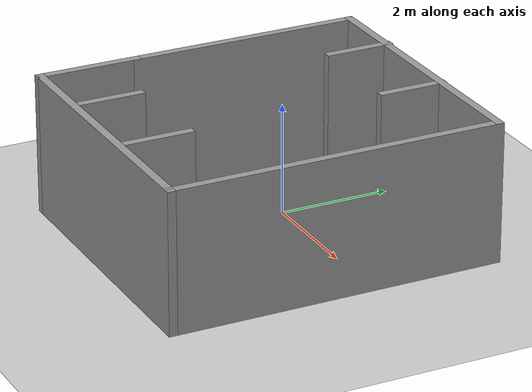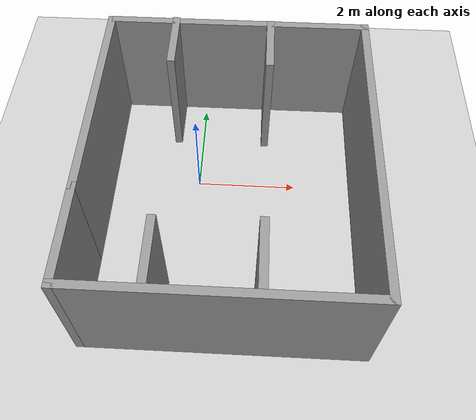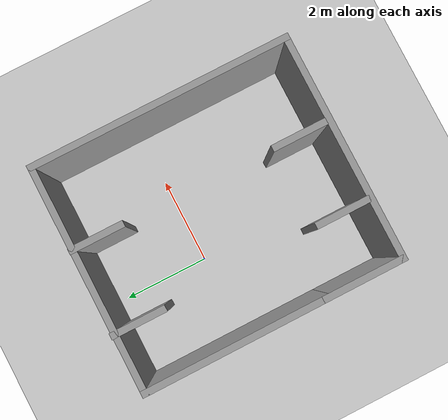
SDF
<sdf version="1.7">
 <world name="soccer">
  <light name="sun" type="directional">
   <pose>0 0 10 0 -0 0</pose>
   <diffuse>0.8 0.8 0.8 1</diffuse>
   <specular>0.2 0.2 0.2 1</specular>
   <attenuation>
    <range>1000</range>
    <constant>0.9</constant>
    <linear>0.01</linear>
    <quadratic>0.001</quadratic>
   </attenuation>
   <direction>-0.5 0.1 -0.9</direction>
   <spot><inner_angle>0</inner_angle><outer_angle>0</outer_angle><falloff>0</falloff></spot>
  </light>
  <model name="ground_plane">
   <static>1</static>
   <link name="link">
    <collision name="collision">
     <geometry><plane><normal>0 0 1</normal><size>100 100</size></plane></geometry>
     <surface>
      <contact><collide_bitmask>65535</collide_bitmask></contact>
      <friction><ode><mu>100</mu><mu2>50</mu2></ode></friction>
     </surface>
    </collision>
    <visual name="visual">
     <cast_shadows>0</cast_shadows>
     <geometry><plane><normal>0 0 1</normal><size>100 100</size></plane></geometry>
     <material>
      <script><uri>file://media/materials/scripts/gazebo.material</uri><name>Gazebo/Grey</name></script>
     </material>
    </visual>
   </link>
  </model>
  <gravity>0 0 -9.8</gravity>
  <magnetic_field>6e-06 2.3e-05 -4.2e-05</magnetic_field>
  <atmosphere type="adiabatic"/>
  <physics type="ode">
   <max_step_size>0.001</max_step_size>
   <real_time_factor>1</real_time_factor>
   <real_time_update_rate>1000</real_time_update_rate>
  </physics>
  <scene><ambient>0.4 0.4 0.4 1</ambient><background>0.7 0.7 0.7 1</background><shadows>1</shadows></scene>
  <audio><device>default</device></audio>
  <spherical_coordinates>
   <surface_model>EARTH_WGS84</surface_model>
   <latitude_deg>0</latitude_deg>
   <longitude_deg>0</longitude_deg>
   <elevation>0</elevation>
   <heading_deg>0</heading_deg>
  </spherical_coordinates>
  <model name="soccer">
   <pose>0.682311 -0.646392 0 0 -0 0</pose>
   <link name="Wall_10">
    <collision name="Wall_10_Collision">
     <geometry><box><size>1.25 0.15 2.5</size></box></geometry>
     <pose>0 0 1.25 0 -0 0</pose>
    </collision>
    <visual name="Wall_10_Visual">
     <pose>0 0 1.25 0 -0 0</pose>
     <geometry><box><size>1.25 0.15 2.5</size></box></geometry>
     <material>
      <script><uri>file://media/materials/scripts/gazebo.material</uri><name>Gazebo/Grey</name></script>
      <ambient>1 1 1 1</ambient>
     </material>
     <meta><layer>0</layer></meta>
    </visual>
    <pose>0.668171 2.37134 0 0 -0 -1.5708</pose>
   </link>
   <link name="Wall_12">
    <collision name="Wall_12_Collision">
     <geometry><box><size>1.25 0.15 2.5</size></box></geometry>
     <pose>0 0 1.25 0 -0 0</pose>
    </collision>
    <visual name="Wall_12_Visual">
     <pose>0 0 1.25 0 -0 0</pose>
     <geometry><box><size>1.25 0.15 2.5</size></box></geometry>
     <material>
      <script><uri>file://media/materials/scripts/gazebo.material</uri><name>Gazebo/Grey</name></script>
      <ambient>1 1 1 1</ambient>
     </material>
     <meta><layer>0</layer></meta>
    </visual>
    <pose>-1.16829 -2.30038 0 0 -0 1.5708</pose>
   </link>
   <link name="Wall_14">
    <collision name="Wall_14_Collision">
     <geometry><box><size>1.25 0.15 2.5</size></box></geometry>
     <pose>0 0 1.25 0 -0 0</pose>
    </collision>
    <visual name="Wall_14_Visual">
     <pose>0 0 1.25 0 -0 0</pose>
     <geometry><box><size>1.25 0.15 2.5</size></box></geometry>
     <material>
      <script><uri>file://media/materials/scripts/gazebo.material</uri><name>Gazebo/Grey</name></script>
      <ambient>1 1 1 1</ambient>
     </material>
     <meta><layer>0</layer></meta>
    </visual>
    <pose>0.633191 -2.24791 0 0 -0 1.5708</pose>
   </link>
   <link name="Wall_2">
    <collision name="Wall_2_Collision">
     <geometry><box><size>4.25 0.15 2.5</size></box></geometry>
     <pose>0 0 1.25 0 -0 0</pose>
    </collision>
    <visual name="Wall_2_Visual">
     <pose>0 0 1.25 0 -0 0</pose>
     <geometry><box><size>4.25 0.15 2.5</size></box></geometry>
     <material>
      <script><uri>file://media/materials/scripts/gazebo.material</uri><name>Gazebo/Grey</name></script>
      <ambient>1 1 1 1</ambient>
     </material>
     <meta><layer>0</layer></meta>
    </visual>
    <pose>-2.55 0.861173 0 0 -0 1.5708</pose>
   </link>
   <link name="Wall_3">
    <collision name="Wall_3_Collision">
     <geometry><box><size>5.25 0.15 2.5</size></box></geometry>
     <pose>0 0 1.25 0 -0 0</pose>
    </collision>
    <visual name="Wall_3_Visual">
     <pose>0 0 1.25 0 -0 0</pose>
     <geometry><box><size>5.25 0.15 2.5</size></box></geometry>
     <material>
      <script><uri>file://media/materials/scripts/gazebo.material</uri><name>Gazebo/Grey</name></script>
      <ambient>1 1 1 1</ambient>
     </material>
     <meta><layer>0</layer></meta>
    </visual>
    <pose>-0 2.91117 0 0 -0 0</pose>
   </link>
   <link name="Wall_4">
    <collision name="Wall_4_Collision">
     <geometry><box><size>6 0.15 2.5</size></box></geometry>
     <pose>0 0 1.25 0 -0 0</pose>
    </collision>
    <visual name="Wall_4_Visual">
     <pose>0 0 1.25 0 -0 0</pose>
     <geometry><box><size>6 0.15 2.5</size></box></geometry>
     <material>
      <script><uri>file://media/materials/scripts/gazebo.material</uri><name>Gazebo/Grey</name></script>
      <ambient>1 1 1 1</ambient>
     </material>
     <meta><layer>0</layer></meta>
    </visual>
    <pose>2.55 -0.013827 0 0 -0 -1.5708</pose>
   </link>
   <link name="Wall_5">
    <collision name="Wall_5_Collision">
     <geometry><box><size>5.25 0.15 2.5</size></box></geometry>
     <pose>0 0 1.25 0 -0 0</pose>
    </collision>
    <visual name="Wall_5_Visual">
     <pose>0 0 1.25 0 -0 0</pose>
     <geometry><box><size>5.25 0.15 2.5</size></box></geometry>
     <material>
      <script><uri>file://media/materials/scripts/gazebo.material</uri><name>Gazebo/Grey</name></script>
      <ambient>1 1 1 1</ambient>
     </material>
     <meta><layer>0</layer></meta>
    </visual>
    <pose>-0 -2.93883 0 0 -0 3.14159</pose>
   </link>
   <link name="Wall_6">
    <collision name="Wall_6_Collision">
     <geometry><box><size>1.9 0.15 2.5</size></box></geometry>
     <pose>0 0 1.25 0 -0 0</pose>
    </collision>
    <visual name="Wall_6_Visual">
     <pose>0 0 1.25 0 -0 0</pose>
     <geometry><box><size>1.9 0.15 2.5</size></box></geometry>
     <material>
      <script><uri>file://media/materials/scripts/gazebo.material</uri><name>Gazebo/Grey</name></script>
      <ambient>1 1 1 1</ambient>
     </material>
     <meta><layer>0</layer></meta>
    </visual>
    <pose>-2.55 -2.06383 0 0 -0 1.5708</pose>
   </link>
   <link name="Wall_8">
    <collision name="Wall_8_Collision">
     <geometry><box><size>1.25 0.15 2.5</size></box></geometry>
     <pose>0 0 1.25 0 -0 0</pose>
    </collision>
    <visual name="Wall_8_Visual">
     <pose>0 0 1.25 0 -0 0</pose>
     <geometry><box><size>1.25 0.15 2.5</size></box></geometry>
     <material>
      <script><uri>file://media/materials/scripts/gazebo.material</uri><name>Gazebo/Grey</name></script>
      <ambient>1 1 1 1</ambient>
     </material>
     <meta><layer>0</layer></meta>
    </visual>
    <pose>-1.23825 2.38883 0 0 -0 -1.5708</pose>
   </link>
   <static>1</static>
  </model>
 </world>
</sdf>
